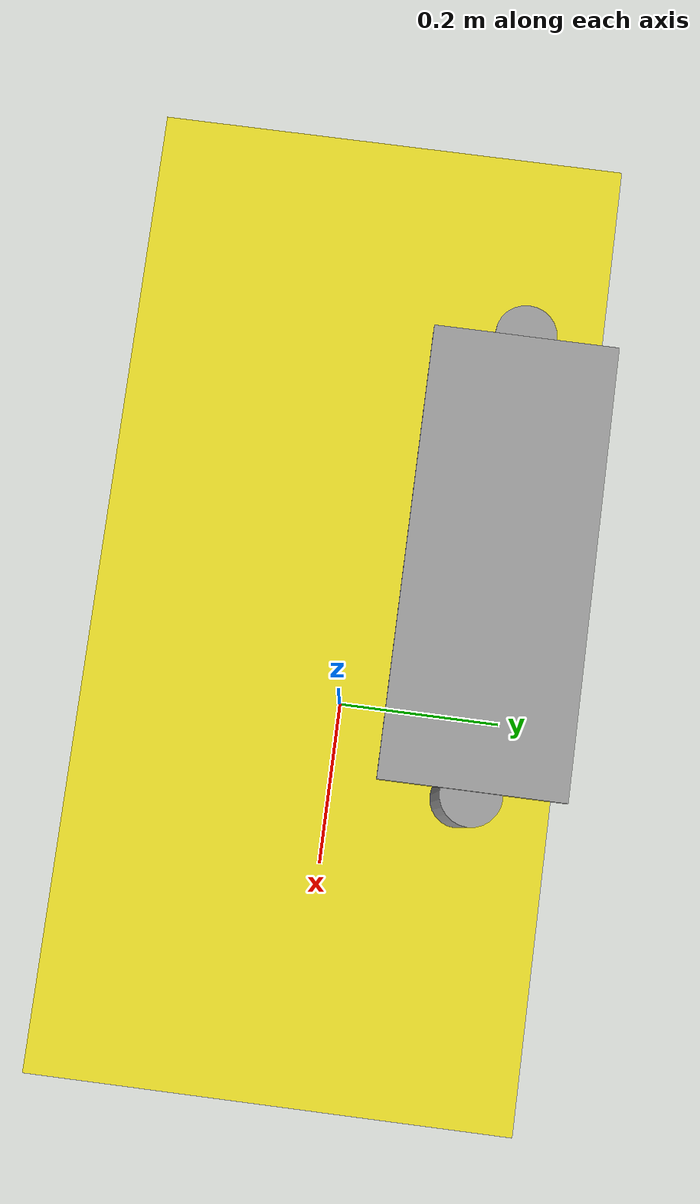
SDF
<?xml version="1.0" ?>
<sdf version="1.4">
  <model name="box_with_shelf">
    <static>true</static>
    <link name="body">
      <pose>0 0 0.01 0 0 0</pose>
      <gravity>true</gravity>
      <inertial>
	<pose>0 0 0.005 0 0 0</pose>
        <mass>50</mass>
        <inertia>
          <ixx>2.45</ixx>
          <ixy>0.0</ixy>
          <ixz>0.0</ixz>
          <iyy>1.53125</iyy>
          <iyz>0.0</iyz>
          <izz>1.53125</izz>
        </inertia>
      </inertial>
      <visual name="body-visual">
	<pose>0 0 0.39 0 0 0</pose>
        <geometry>
	  <box>
	    <size>0.70 0.34 0.78</size>
          </box>
        </geometry>
        <material>
	  <script>
	    <uri>file://media/materials/scripts/gazebo.material</uri>
	    <name>Gazebo/Yellow</name>
	  </script>
        </material>
        <cast_shadows>false</cast_shadows>
      </visual>
      <!-- Collision Elements: -->
      <collision name="collision_box">
	<pose>0 0 0.39 0 0 0</pose>
        <geometry>
	  <box>
	    <size>0.70 0.36 0.78</size>
          </box>
        </geometry>
      </collision>
      <!-- Shelf: -->
      <collision name="collision_shelf">
        <pose>-0.025 0.105 0.895 0 0 0 </pose>
        <geometry>
	  <box>
	    <size>0.295 0.12 0.01</size>
          </box>
        </geometry>
      </collision>
      <visual name="visual_shelf">
        <pose>-0.025 0.105 0.895 0 0 0 </pose>
        <cast_shadows>false</cast_shadows>
        <geometry>
	  <box>
	    <size>0.295 0.12 0.01</size>
          </box>
        </geometry>
        <material>
	  <script>
	    <uri>file://media/materials/scripts/gazebo.material</uri>
	    <name>Gazebo/Grey</name>
	  </script>
        </material>
      </visual>
      <visual name="visual_shelf_pillar1">
        <pose>0.125 0.105 0.84 0 0 0 </pose>
        <cast_shadows>false</cast_shadows>
        <geometry>
          <cylinder>
            <radius>0.02</radius>
	    <length>0.11</length>
          </cylinder>
        </geometry>
        <material>
	  <script>
	    <uri>file://media/materials/scripts/gazebo.material</uri>
	    <name>Gazebo/Grey</name>
	  </script>
        </material>
      </visual>
      <visual name="visual_shelf_pillar2">
        <pose>-0.175 0.105 0.84 0 0 0 </pose>
        <cast_shadows>false</cast_shadows>
        <geometry>
          <cylinder>
            <radius>0.02</radius>
	    <length>0.11</length>
          </cylinder>
        </geometry>
        <material>
	  <script>
	    <uri>file://media/materials/scripts/gazebo.material</uri>
	    <name>Gazebo/Grey</name>
	  </script>
        </material>
      </visual>
    </link>

  </model>
</sdf>
